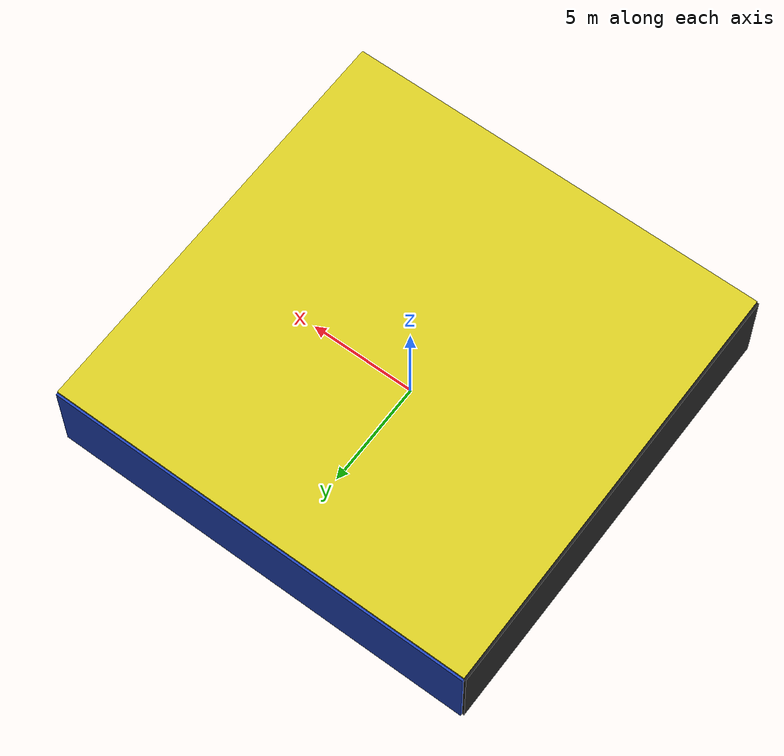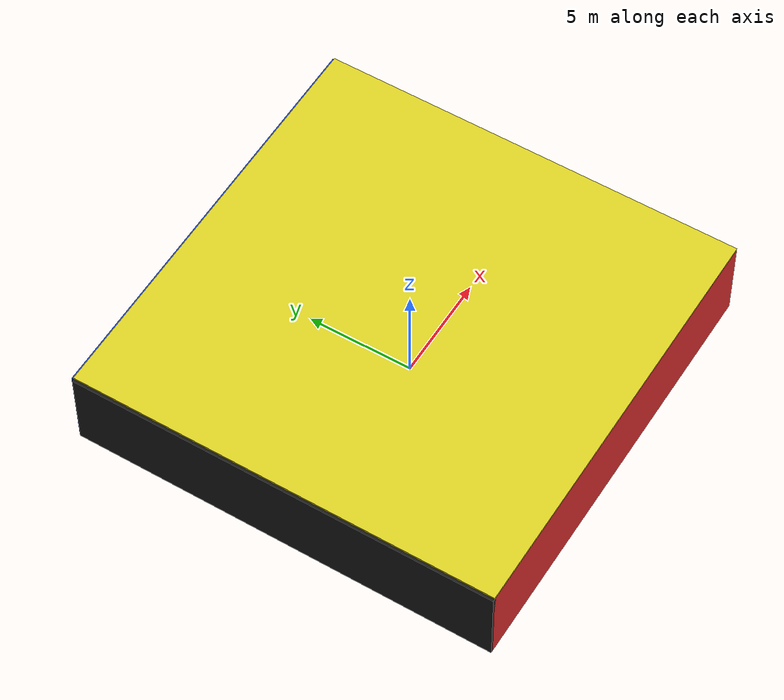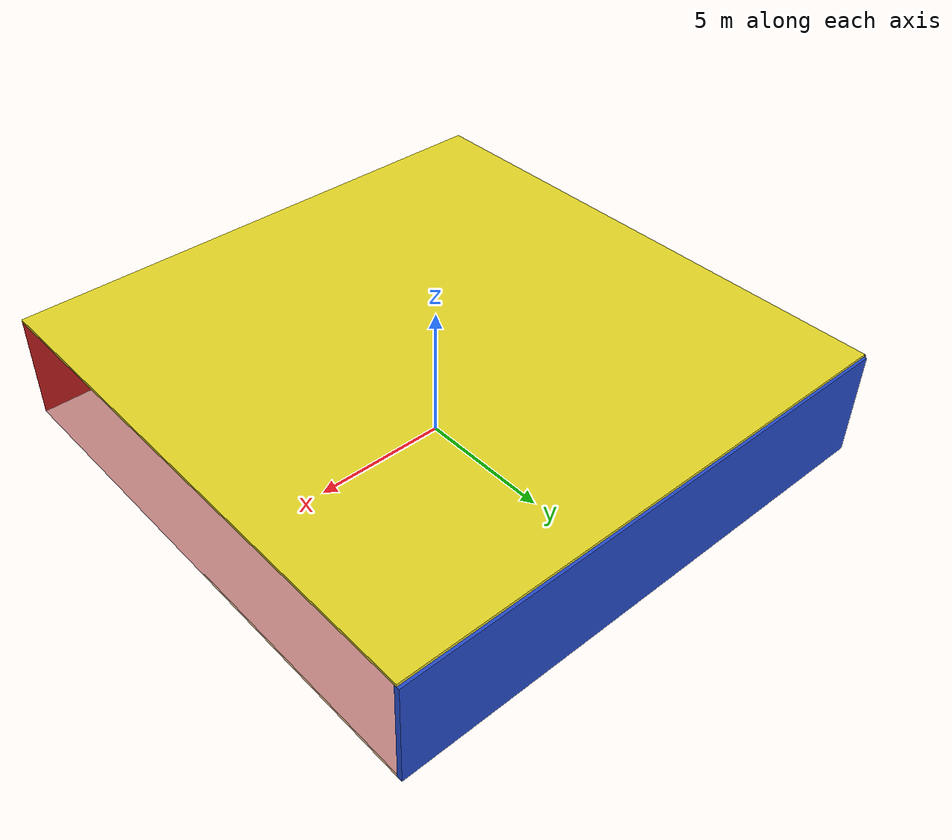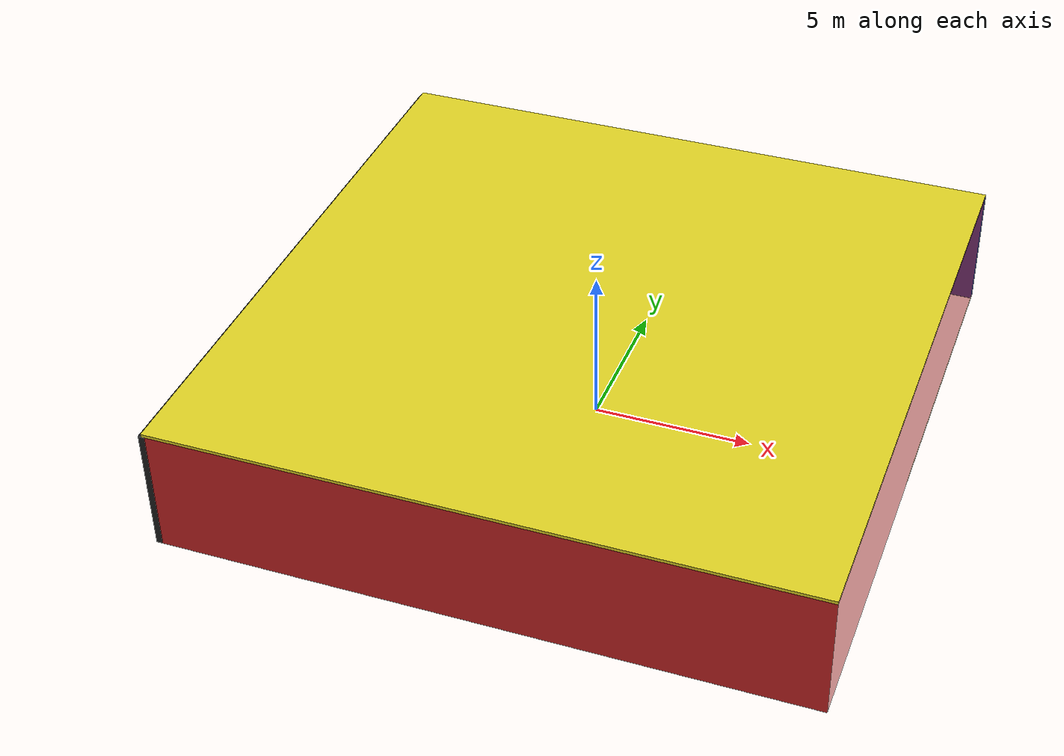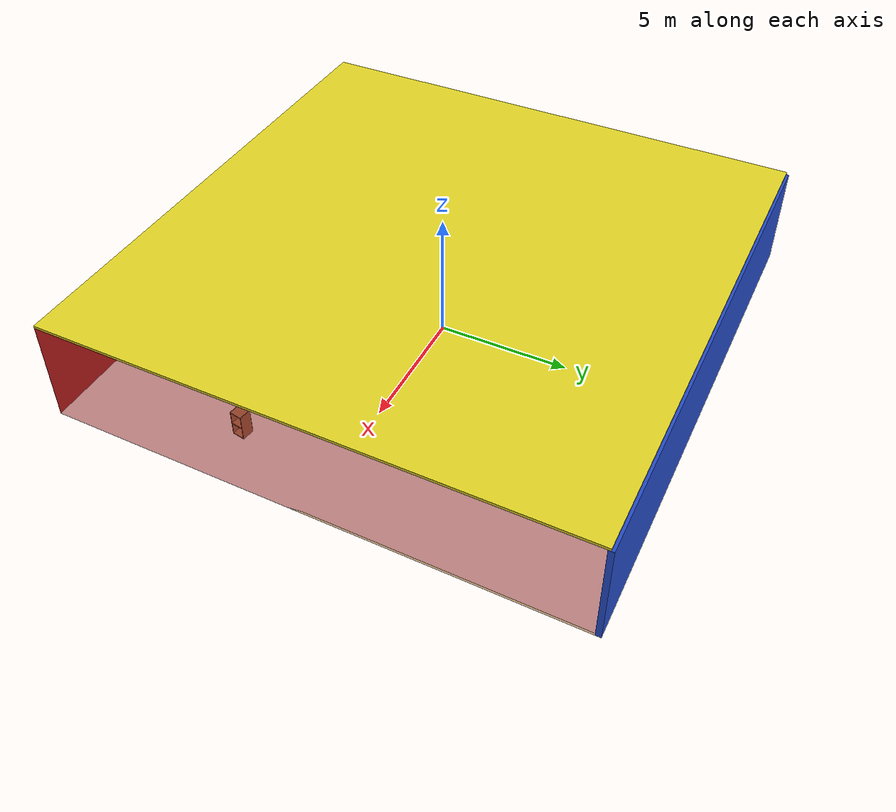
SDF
<sdf version="1.4">
 <world name="default">
  <physics type="ode">
   <max_step_size>0.001</max_step_size>
   <real_time_factor>1</real_time_factor>
   <real_time_update_rate>1000</real_time_update_rate>
   <gravity>0 0 -9.8</gravity>
  </physics>
  <scene><ambient>0.4 0.4 0.4 1</ambient><background>0.7 0.7 0.7 1</background><shadows>1</shadows></scene>
  <model name="Surrounding">
   <static>1</static>
   <link name="Ceiling">
    <collision name="Ceiling_Collision"><geometry><box><size>20 20 0.1</size></box></geometry></collision>
    <visual name="Ceiling_Visual">
     <geometry><box><size>20 20 0.1</size></box></geometry>
     <material>
      <script><uri>file://media/materials/scripts/gazebo.material</uri><name>Gazebo/YellowGlow</name></script>
     </material>
    </visual>
    <pose>0 0 4.05 0 0 0</pose>
   </link>
   <link name="Wall_South">
    <collision name="Wall_South_Collision">
     <geometry><box><size>20 0 4</size></box></geometry>
     <pose>0 0 2 0 -0 0</pose>
    </collision>
    <visual name="Wall_South_Visual">
     <pose>0 0 2 0 -0 0</pose>
     <geometry><box><size>20 0 4</size></box></geometry>
     <material>
      <script><uri>file://media/materials/scripts/gazebo.material</uri><name>Gazebo/RedGlow</name></script>
     </material>
    </visual>
    <velocity_decay><linear>0</linear><angular>0</angular></velocity_decay>
    <pose>0 -10 0 0 -0 0</pose>
   </link>
   <link name="Wall_East">
    <collision name="Wall_21_Collision">
     <geometry><box><size>20 0 4</size></box></geometry>
     <pose>0 0 2 0 -0 0</pose>
    </collision>
    <visual name="Wall_21_Visual">
     <pose>0 0 2 0 -0 0</pose>
     <geometry><box><size>20 0 4</size></box></geometry>
     <material>
      <script><uri>file://media/materials/scripts/gazebo.material</uri><name>Gazebo/RedTransparent</name></script>
     </material>
    </visual>
    <velocity_decay><linear>0</linear><angular>0</angular></velocity_decay>
    <pose>10 0 0 0 -0 1.5708</pose>
   </link>
   <link name="Wall_North">
    <collision name="Wall_22_Collision">
     <geometry><box><size>20 0.2 4</size></box></geometry>
     <pose>0 0 2 0 -0 0</pose>
    </collision>
    <visual name="Wall_22_Visual">
     <pose>0 0 2 0 -0 0</pose>
     <geometry><box><size>20 0.2 4</size></box></geometry>
     <material>
      <script><uri>file://media/materials/scripts/gazebo.material</uri><name>Gazebo/BlueGlow</name></script>
     </material>
    </visual>
    <velocity_decay><linear>0</linear><angular>0</angular></velocity_decay>
    <pose>0 10 0 0 -0 0</pose>
   </link>
   <link name="Wall_West">
    <collision name="Wall_23_Collision">
     <geometry><box><size>20 0.2 4</size></box></geometry>
     <pose>0 0 2 0 -0 0</pose>
    </collision>
    <visual name="Wall_23_Visual">
     <pose>0 0 2 0 -0 0</pose>
     <geometry><box><size>20 0.2 4</size></box></geometry>
     <material>
      <script><uri>file://media/materials/scripts/gazebo.material</uri><name>Gazebo/Black</name></script>
     </material>
    </visual>
    <velocity_decay><linear>0</linear><angular>0</angular></velocity_decay>
    <pose>-10 0 0 0 0 -1.5708</pose>
   </link>
   <link name="Ground_link">
    <collision name="collision">
     <pose>0 0 .05 0 -0 0</pose>
     <geometry><box><size>20 20 0.1</size></box></geometry>
    </collision>
    <visual name="visual">
     <pose>0 0 .05 0 -0 0</pose>
     <geometry><box><size>20 20 0.1</size></box></geometry>
     <material>
      <script>
       <uri>file://media/materials/scripts/gazebo.material</uri>
       <name>Gazebo/OrangeTransparent</name>
      </script>
     </material>
    </visual>
   </link>
   <static>1</static>
  </model>
  <spherical_coordinates>
   <surface_model>EARTH_WGS84</surface_model>
   <latitude_deg>0</latitude_deg>
   <longitude_deg>0</longitude_deg>
   <elevation>0</elevation>
   <heading_deg>0</heading_deg>
  </spherical_coordinates>
  <light name="lightball_0" type="diffuse">
   <diffuse>0.8 0.8 0.8 1</diffuse>
   <specular>0.2 0.2 0.2 1</specular>
   <attenuation>
    <range>100</range>
    <constant>0.7</constant>
    <linear>0.01</linear>
    <quadratic>0.001</quadratic>
   </attenuation>
   <direction>-0.5 0.1 -0.9</direction>
   <pose>8.06638703703 4.73665098828 1.23050918492 0 0 0</pose>
  </light>
  <light name="lightball_1" type="diffuse">
   <diffuse>0.8 0.8 0.8 1</diffuse>
   <specular>0.2 0.2 0.2 1</specular>
   <attenuation>
    <range>100</range>
    <constant>0.7</constant>
    <linear>0.01</linear>
    <quadratic>0.001</quadratic>
   </attenuation>
   <direction>-0.5 0.1 -0.9</direction>
   <pose>-6.07203673295 4.86970853337 1.64371375011 0 0 0</pose>
  </light>
  <light name="lightball_2" type="diffuse">
   <diffuse>0.8 0.8 0.8 1</diffuse>
   <specular>0.2 0.2 0.2 1</specular>
   <attenuation>
    <range>100</range>
    <constant>0.7</constant>
    <linear>0.01</linear>
    <quadratic>0.001</quadratic>
   </attenuation>
   <direction>-0.5 0.1 -0.9</direction>
   <pose>-5.4465622009 -8.1084754801 3.31390207205 0 0 0</pose>
  </light>
  <light name="lightball_3" type="diffuse">
   <diffuse>0.8 0.8 0.8 1</diffuse>
   <specular>0.2 0.2 0.2 1</specular>
   <attenuation>
    <range>100</range>
    <constant>0.7</constant>
    <linear>0.01</linear>
    <quadratic>0.001</quadratic>
   </attenuation>
   <direction>-0.5 0.1 -0.9</direction>
   <pose>-8.46682691871 6.52914138557 2.04505052162 0 0 0</pose>
  </light>
  <light name="lightball_4" type="diffuse">
   <diffuse>0.8 0.8 0.8 1</diffuse>
   <specular>0.2 0.2 0.2 1</specular>
   <attenuation>
    <range>100</range>
    <constant>0.7</constant>
    <linear>0.01</linear>
    <quadratic>0.001</quadratic>
   </attenuation>
   <direction>-0.5 0.1 -0.9</direction>
   <pose>-8.12041151494 6.5066052773 2.18229089257 0 0 0</pose>
  </light>
  <light name="lightball_5" type="diffuse">
   <diffuse>0.8 0.8 0.8 1</diffuse>
   <specular>0.2 0.2 0.2 1</specular>
   <attenuation>
    <range>100</range>
    <constant>0.7</constant>
    <linear>0.01</linear>
    <quadratic>0.001</quadratic>
   </attenuation>
   <direction>-0.5 0.1 -0.9</direction>
   <pose>-2.11704023709 1.82870716773 3.55812896343 0 0 0</pose>
  </light>
  <light name="lightball_6" type="diffuse">
   <diffuse>0.8 0.8 0.8 1</diffuse>
   <specular>0.2 0.2 0.2 1</specular>
   <attenuation>
    <range>100</range>
    <constant>0.7</constant>
    <linear>0.01</linear>
    <quadratic>0.001</quadratic>
   </attenuation>
   <direction>-0.5 0.1 -0.9</direction>
   <pose>-0.794809054729 3.8134586697 3.14098302877 0 0 0</pose>
  </light>
  <include><uri>model://cabinet</uri><pose>-2.01393749825 -7.67745262552 0 0 0 1.83277273098</pose></include>
  <include><uri>model://cabinet</uri><pose>-1.94943016786 -3.60324514713 0 0 0 0.808705046476</pose></include>
  <include>
   <uri>model://textured_shapes</uri>
   <pose>-1.52610936058 7.40221819119 0 0 0 1.37067670123</pose>
  </include>
  <include>
   <uri>model://textured_shapes</uri>
   <pose>0.98666666837 -7.10858103225 0 0 0 1.90745339516</pose>
  </include>
  <include><uri>model://table</uri><pose>0.515051172643 4.73489364235 0 0 0 1.5707462061</pose></include>
  <include><uri>model://cabinet</uri><pose>7.90099365427 -3.75951364838 0 0 0 2.97295381913</pose></include>
 </world>
</sdf>

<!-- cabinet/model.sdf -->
<sdf version="1.5">
  <model name="cabinet">
    <static>true</static>
    <link name="cabinet_bottom_plate">
      <inertial>
        <pose>0 0 -1 0 0 0</pose>
        <inertia>
          <ixx>2.050000</ixx>
          <ixy>0</ixy>
          <ixz>0</ixz>
          <iyy>2.050000</iyy>
          <iyz>0</iyz>
          <izz>2.050000</izz>
        </inertia>
        <mass>25.000000</mass>
      </inertial>
      <collision name="cabinet_bottom_plate_geom">
        <pose>0 0 0.010000 0 0 0</pose>
        <geometry>
          <box>
            <size>0.450000 0.450000 0.020000</size>
          </box>
        </geometry>
      </collision>
      <visual name="cabinet_bottom_plate_geom_visual">
        <pose>0 0 0.010000 0 0 0</pose>
        <geometry>
          <box>
            <size>0.450000 0.450000 0.020000</size>
          </box>
        </geometry>
        <material>
          <script>
            <uri>model://media/materials/scripts/gazebo.material</uri>
            <name>Gazebo/Wood</name>
          </script>
        </material>
      </visual>
      <collision name="cabinet_bottom_plate_geom_cabinet_back_plate">
        <pose>0.235000 0 0.510000 0 0 0</pose>
        <geometry>
          <box>
            <size>0.020000 0.450000 1.020000</size>
          </box>
        </geometry>
      </collision>
      <visual name="cabinet_bottom_plate_geom_cabinet_back_plate_visual">
        <pose>0.235000 0 0.510000 0 0 0</pose>
        <geometry>
          <box>
            <size>0.020000 0.450000 1.020000</size>
          </box>
        </geometry>
        <material>
          <script>
            <uri>model://media/materials/scripts/gazebo.material</uri>
            <name>Gazebo/Wood</name>
          </script>
        </material>
      </visual>
      <collision name="cabinet_bottom_plate_geom_cabinet_left_plate">
        <pose>0 0.235000 0.510000 0 0 0</pose>
        <geometry>
          <box>
            <size>0.450000 0.020000 1.020000</size>
          </box>
        </geometry>
      </collision>
      <visual name="cabinet_bottom_plate_geom_cabinet_left_plate_visual">
        <pose>0 0.235000 0.510000 0 0 0</pose>
        <geometry>
          <box>
            <size>0.450000 0.020000 1.020000</size>
          </box>
        </geometry>
        <material>
          <script>
            <uri>model://media/materials/scripts/gazebo.material</uri>
            <name>Gazebo/Wood</name>
          </script>
        </material>
      </visual>
      <collision name="cabinet_bottom_plate_geom_cabinet_middle_plate">
        <pose>0 0 0.510000 0 0 0</pose>
        <geometry>
          <box>
            <size>0.450000 0.450000 0.020000</size>
          </box>
        </geometry>
      </collision>
      <visual name="cabinet_bottom_plate_geom_cabinet_middle_plate_visual">
        <pose>0 0 0.510000 0 0 0</pose>
        <geometry>
          <box>
            <size>0.450000 0.450000 0.020000</size>
          </box>
        </geometry>
        <material>
          <script>
            <uri>model://media/materials/scripts/gazebo.material</uri>
            <name>Gazebo/Wood</name>
          </script>
        </material>
      </visual>
      <collision name="cabinet_bottom_plate_geom_cabinet_right_plate">
        <pose>0 -0.235000 0.510000 0 0 0</pose>
        <geometry>
          <box>
            <size>0.450000 0.020000 1.020000</size>
          </box>
        </geometry>
      </collision>
      <visual name="cabinet_bottom_plate_geom_cabinet_right_plate_visual">
        <pose>0 -0.235000 0.510000 0 0 0</pose>
        <geometry>
          <box>
            <size>0.450000 0.020000 1.020000</size>
          </box>
        </geometry>
        <material>
          <script>
            <uri>model://media/materials/scripts/gazebo.material</uri>
            <name>Gazebo/Wood</name>
          </script>
        </material>
      </visual>
      <collision name="cabinet_bottom_plate_geom_cabinet_top_plate">
        <pose>0 0 1.010000 0 0 0</pose>
        <geometry>
          <box>
            <size>0.450000 0.450000 0.020000</size>
          </box>
        </geometry>
      </collision>
      <visual name="cabinet_bottom_plate_geom_cabinet_top_plate_visual">
        <pose>0 0 1.010000 0 0 0</pose>
        <geometry>
          <box>
            <size>0.450000 0.450000 0.020000</size>
          </box>
        </geometry>
        <material>
          <script>
            <uri>model://media/materials/scripts/gazebo.material</uri>
            <name>Gazebo/Wood</name>
          </script>
        </material>
      </visual>
    </link>
  </model>
</sdf>

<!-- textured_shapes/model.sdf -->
<sdf version="1.6">
  <model name="textured_shapes">
    <pose>0 0 0.5 0 0 0</pose>
    <link name="box">
      <pose>0 -1.5 0 0 0 0</pose>
      <collision name="collision">
        <geometry>
          <box>
            <size>1 1 1</size>
          </box>
        </geometry>
      </collision>
      <visual name="visual">
        <geometry>
          <box>
            <size>1 1 1</size>
          </box>
        </geometry>
        <material>
          <script>
            <uri>model://../model_source/models/textured_shapes/materials/scripts</uri>
            <uri>model://../model_source/models/textured_shapes/materials/textures</uri>
            <name>TexturedShape/Squares</name>
          </script>
        </material>
      </visual>
    </link>
    <link name="sphere">
      <collision name="collision">
        <geometry>
          <sphere>
            <radius>0.5</radius>
          </sphere>
        </geometry>
      </collision>
      <visual name="visual">
        <geometry>
          <sphere>
            <radius>0.5</radius>
          </sphere>
        </geometry>
        <material>
          <script>
            <uri>model://../model_source/models/textured_shapes/materials/scripts</uri>
            <uri>model://../model_source/models/textured_shapes/materials/textures</uri>
            <name>TexturedShape/Squares</name>
          </script>
        </material>
      </visual>
    </link>
    <link name="cylinder">
      <pose>0 1.5 0 0 0 0</pose>
      <collision name="collision">
        <geometry>
          <cylinder>
            <radius>0.5</radius>
            <length>1</length>
          </cylinder>
        </geometry>
      </collision>
      <visual name="visual">
        <geometry>
          <cylinder>
            <radius>0.5</radius>
            <length>1</length>
          </cylinder>
        </geometry>
        <material>
          <script>
            <uri>model://../model_source/models/textured_shapes/materials/scripts</uri>
            <uri>model://../model_source/models/textured_shapes/materials/textures</uri>
            <name>TexturedShape/Squares</name>
          </script>
        </material>
      </visual>
    </link>
  </model>
</sdf>

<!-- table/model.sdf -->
<sdf version="1.5">
  <model name="table">
    <static>true</static>
    <link name="link">
      <collision name="surface">
        <pose>0 0 1.0 0 0 0</pose>
        <geometry>
          <box>
            <size>1.5 0.8 0.03</size>
          </box>
        </geometry>
        <surface>
          <friction>
            <ode>
              <mu>0.6</mu>
              <mu2>0.6</mu2>
            </ode>
          </friction>
        </surface>
      </collision>
      <visual name="visual1">
        <pose>0 0 1.0 0 0 0</pose>
        <geometry>
          <box>
            <size>1.5 0.8 0.03</size>
          </box>
        </geometry>
        <material>
          <script>
            <uri>model://media/materials/scripts/gazebo.material</uri>
            <name>Gazebo/Wood</name>
          </script>
        </material>
      </visual>
      <collision name="front_left_leg">
        <pose>0.68 0.38 0.5 0 0 0</pose>
        <geometry>
          <cylinder>
            <radius>0.02</radius>
            <length>1.0</length>
          </cylinder>
        </geometry>
      </collision>
      <visual name="front_left_leg">
        <pose>0.68 0.38 0.5 0 0 0</pose>
        <geometry>
          <cylinder>
            <radius>0.02</radius>
            <length>1.0</length>
          </cylinder>
        </geometry>
        <material>
          <script>
            <uri>model://media/materials/scripts/gazebo.material</uri>
            <name>Gazebo/Grey</name>
          </script>
        </material>
      </visual>
      <collision name="front_right_leg">
        <pose>0.68 -0.38 0.5 0 0 0</pose>
        <geometry>
          <cylinder>
            <radius>0.02</radius>
            <length>1.0</length>
          </cylinder>
        </geometry>
      </collision>
      <visual name="front_right_leg">
        <pose>0.68 -0.38 0.5 0 0 0</pose>
        <geometry>
          <cylinder>
            <radius>0.02</radius>
            <length>1.0</length>
          </cylinder>
        </geometry>
        <material>
          <script>
            <uri>model://media/materials/scripts/gazebo.material</uri>
            <name>Gazebo/Grey</name>
          </script>
        </material>
      </visual>
      <collision name="back_right_leg">
        <pose>-0.68 -0.38 0.5 0 0 0</pose>
        <geometry>
          <cylinder>
            <radius>0.02</radius>
            <length>1.0</length>
          </cylinder>
        </geometry>
      </collision>
      <visual name="back_right_leg">
        <pose>-0.68 -0.38 0.5 0 0 0</pose>
        <geometry>
          <cylinder>
            <radius>0.02</radius>
            <length>1.0</length>
          </cylinder>
        </geometry>
        <material>
          <script>
            <uri>model://media/materials/scripts/gazebo.material</uri>
            <name>Gazebo/Grey</name>
          </script>
        </material>
      </visual>
      <collision name="back_left_leg">
        <pose>-0.68 0.38 0.5 0 0 0</pose>
        <geometry>
          <cylinder>
            <radius>0.02</radius>
            <length>1.0</length>
          </cylinder>
        </geometry>
      </collision>
      <visual name="back_left_leg">
        <pose>-0.68 0.38 0.5 0 0 0</pose>
        <geometry>
          <cylinder>
            <radius>0.02</radius>
            <length>1.0</length>
          </cylinder>
        </geometry>
        <material>
          <script>
            <uri>model://media/materials/scripts/gazebo.material</uri>
            <name>Gazebo/Grey</name>
          </script>
        </material>
      </visual>
    </link>
  </model>
</sdf>
